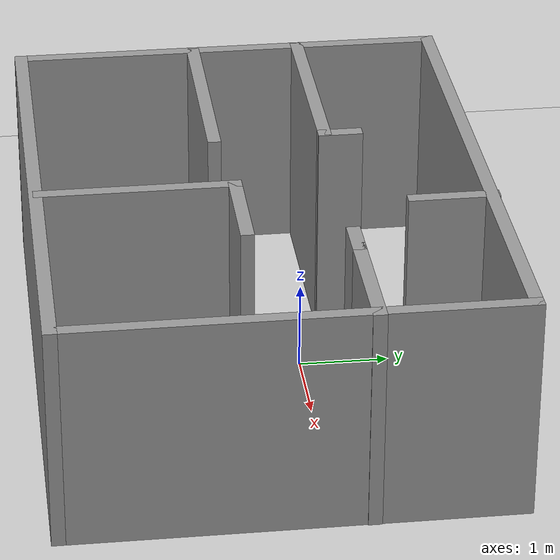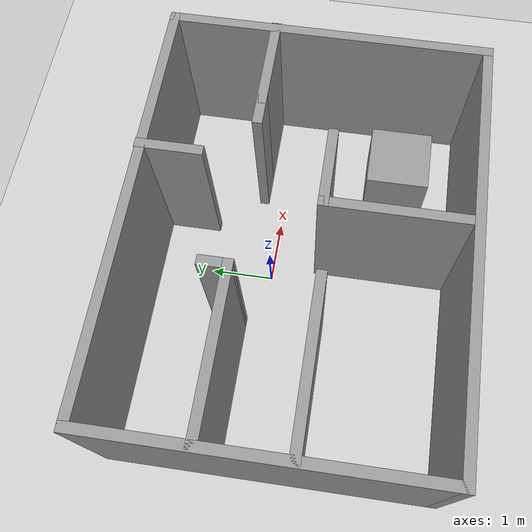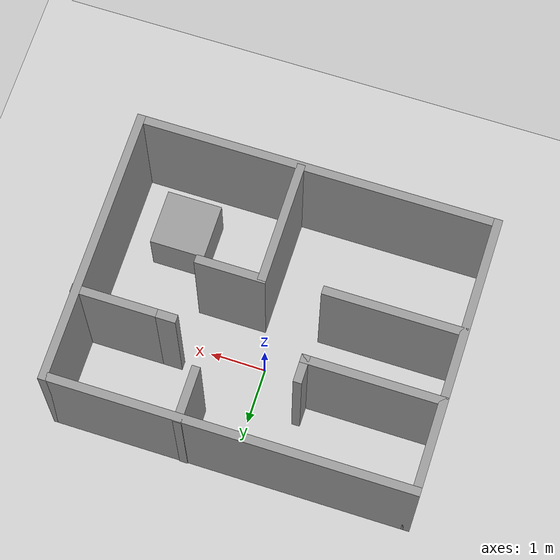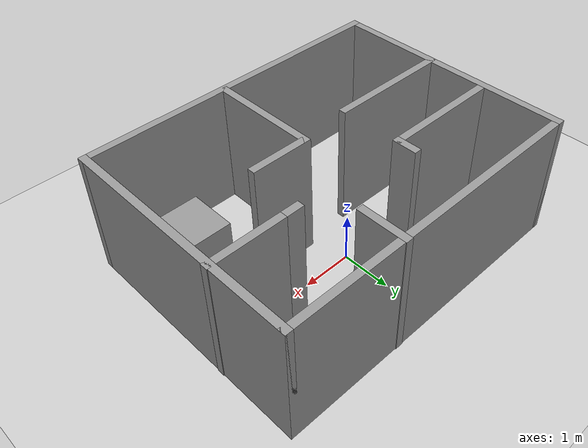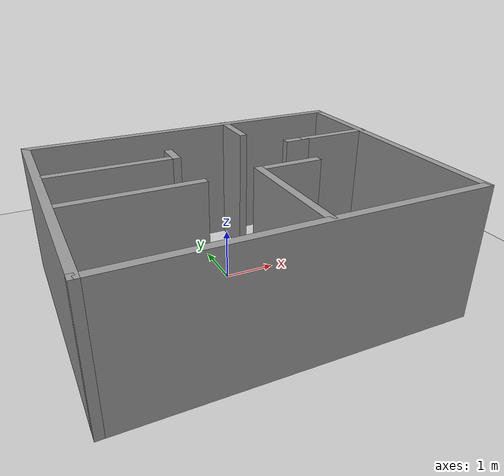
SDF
<sdf version="1.7">
 <world name="default">
  <light name="sun" type="directional">
   <pose>0 0 10 0 -0 0</pose>
   <diffuse>0.8 0.8 0.8 1</diffuse>
   <specular>0.2 0.2 0.2 1</specular>
   <attenuation>
    <range>1000</range>
    <constant>0.9</constant>
    <linear>0.01</linear>
    <quadratic>0.001</quadratic>
   </attenuation>
   <direction>-0.5 0.1 -0.9</direction>
   <spot><inner_angle>0</inner_angle><outer_angle>0</outer_angle><falloff>0</falloff></spot>
  </light>
  <model name="ground_plane">
   <static>1</static>
   <link name="link">
    <collision name="collision">
     <geometry><plane><normal>0 0 1</normal><size>100 100</size></plane></geometry>
     <surface><friction><ode><mu>100</mu><mu2>50</mu2></ode></friction></surface>
    </collision>
    <visual name="visual">
     <cast_shadows>0</cast_shadows>
     <geometry><plane><normal>0 0 1</normal><size>100 100</size></plane></geometry>
     <material>
      <script><uri>file://media/materials/scripts/gazebo.material</uri><name>Gazebo/Grey</name></script>
     </material>
    </visual>
   </link>
  </model>
  <gravity>0 0 -9.8</gravity>
  <magnetic_field>6e-06 2.3e-05 -4.2e-05</magnetic_field>
  <atmosphere type="adiabatic"/>
  <physics type="ode">
   <max_step_size>0.001</max_step_size>
   <real_time_factor>1</real_time_factor>
   <real_time_update_rate>1000</real_time_update_rate>
  </physics>
  <scene><ambient>0.4 0.4 0.4 1</ambient><background>0.7 0.7 0.7 1</background><shadows>1</shadows></scene>
  <spherical_coordinates>
   <surface_model>EARTH_WGS84</surface_model>
   <latitude_deg>0</latitude_deg>
   <longitude_deg>0</longitude_deg>
   <elevation>0</elevation>
   <heading_deg>0</heading_deg>
  </spherical_coordinates>
  <model name="new_room">
   <pose>-0.001362 0.437482 0 0 -0 0</pose>
   <link name="Wall_12">
    <collision name="Wall_12_Collision">
     <geometry><box><size>6.5 0.15 2.5</size></box></geometry>
     <pose>0 0 1.25 0 -0 0</pose>
    </collision>
    <visual name="Wall_12_Visual">
     <pose>0 0 1.25 0 -0 0</pose>
     <geometry><box><size>6.5 0.15 2.5</size></box></geometry>
     <material>
      <script><uri>file://media/materials/scripts/gazebo.material</uri><name>Gazebo/Grey</name></script>
      <ambient>1 1 1 1</ambient>
     </material>
     <meta><layer>0</layer></meta>
    </visual>
    <pose>-0.005612 1.5043 0 0 -0 0</pose>
   </link>
   <link name="Wall_13">
    <collision name="Wall_13_Collision">
     <geometry><box><size>5 0.15 2.5</size></box></geometry>
     <pose>0 0 1.25 0 -0 0</pose>
    </collision>
    <visual name="Wall_13_Visual">
     <pose>0 0 1.25 0 -0 0</pose>
     <geometry><box><size>5 0.15 2.5</size></box></geometry>
     <material>
      <script><uri>file://media/materials/scripts/gazebo.material</uri><name>Gazebo/Grey</name></script>
      <ambient>1 1 1 1</ambient>
     </material>
     <meta><layer>0</layer></meta>
    </visual>
    <pose>3.16939 -0.9207 0 0 -0 -1.5708</pose>
   </link>
   <link name="Wall_14">
    <collision name="Wall_14_Collision">
     <geometry><box><size>6.5 0.15 2.5</size></box></geometry>
     <pose>0 0 1.25 0 -0 0</pose>
    </collision>
    <visual name="Wall_14_Visual">
     <pose>0 0 1.25 0 -0 0</pose>
     <geometry><box><size>6.5 0.15 2.5</size></box></geometry>
     <material>
      <script><uri>file://media/materials/scripts/gazebo.material</uri><name>Gazebo/Grey</name></script>
      <ambient>1 1 1 1</ambient>
     </material>
     <meta><layer>0</layer></meta>
    </visual>
    <pose>-0.005612 -3.3457 0 0 -0 3.14159</pose>
   </link>
   <link name="Wall_15">
    <collision name="Wall_15_Collision">
     <geometry><box><size>5 0.15 2.5</size></box></geometry>
     <pose>0 0 1.25 0 -0 0</pose>
    </collision>
    <visual name="Wall_15_Visual">
     <pose>0 0 1.25 0 -0 0</pose>
     <geometry><box><size>5 0.15 2.5</size></box></geometry>
     <material>
      <script><uri>file://media/materials/scripts/gazebo.material</uri><name>Gazebo/Grey</name></script>
      <ambient>1 1 1 1</ambient>
     </material>
     <meta><layer>0</layer></meta>
    </visual>
    <pose>-3.18061 -0.9207 0 0 -0 1.5708</pose>
   </link>
   <link name="Wall_17">
    <collision name="Wall_17_Collision">
     <geometry><box><size>2.5 0.15 2.5</size></box></geometry>
     <pose>0 0 1.25 0 -0 0</pose>
    </collision>
    <visual name="Wall_17_Visual">
     <pose>0 0 1.25 0 -0 0</pose>
     <geometry><box><size>2.5 0.15 2.5</size></box></geometry>
     <material>
      <script><uri>file://media/materials/scripts/gazebo.material</uri><name>Gazebo/Grey</name></script>
      <ambient>1 1 1 1</ambient>
     </material>
     <meta><layer>0</layer></meta>
    </visual>
    <pose>-1.99239 -0.069475 0 0 -0 0</pose>
   </link>
   <link name="Wall_18">
    <collision name="Wall_18_Collision">
     <geometry><box><size>0.5 0.15 2.5</size></box></geometry>
     <pose>0 0 1.25 0 -0 0</pose>
    </collision>
    <visual name="Wall_18_Visual">
     <pose>0 0 1.25 0 -0 0</pose>
     <geometry><box><size>0.5 0.15 2.5</size></box></geometry>
     <material>
      <script><uri>file://media/materials/scripts/gazebo.material</uri><name>Gazebo/Grey</name></script>
      <ambient>1 1 1 1</ambient>
     </material>
     <meta><layer>0</layer></meta>
    </visual>
    <pose>-0.817387 0.105525 0 0 -0 1.5708</pose>
   </link>
   <link name="Wall_20">
    <collision name="Wall_20_Collision">
     <geometry><box><size>1 0.15 2.5</size></box></geometry>
     <pose>0 0 1.25 0 -0 0</pose>
    </collision>
    <visual name="Wall_20_Visual">
     <pose>0 0 1.25 0 -0 0</pose>
     <geometry><box><size>1 0.15 2.5</size></box></geometry>
     <material>
      <script><uri>file://media/materials/scripts/gazebo.material</uri><name>Gazebo/Grey</name></script>
      <ambient>1 1 1 1</ambient>
     </material>
     <meta><layer>0</layer></meta>
    </visual>
    <pose>0.839788 1.09252 0 0 -0 -1.5708</pose>
   </link>
   <link name="Wall_22">
    <collision name="Wall_22_Collision">
     <geometry><box><size>1.5 0.15 2.5</size></box></geometry>
     <pose>0 0 1.25 0 -0 0</pose>
    </collision>
    <visual name="Wall_22_Visual">
     <pose>0 0 1.25 0 -0 0</pose>
     <geometry><box><size>1.5 0.15 2.5</size></box></geometry>
     <material>
      <script><uri>file://media/materials/scripts/gazebo.material</uri><name>Gazebo/Grey</name></script>
      <ambient>1 1 1 1</ambient>
     </material>
     <meta><layer>0</layer></meta>
    </visual>
    <pose>2.50561 -0.0827 0 0 -0 3.14159</pose>
   </link>
   <link name="Wall_23">
    <collision name="Wall_23_Collision">
     <geometry><box><size>0.5 0.15 2.5</size></box></geometry>
     <pose>0 0 1.25 0 -0 0</pose>
    </collision>
    <visual name="Wall_23_Visual">
     <pose>0 0 1.25 0 -0 0</pose>
     <geometry><box><size>0.5 0.15 2.5</size></box></geometry>
     <material>
      <script><uri>file://media/materials/scripts/gazebo.material</uri><name>Gazebo/Grey</name></script>
      <ambient>1 1 1 1</ambient>
     </material>
     <meta><layer>0</layer></meta>
    </visual>
    <pose>1.65561 -0.0827 0 0 -0 3.14159</pose>
   </link>
   <link name="Wall_25">
    <collision name="Wall_25_Collision">
     <geometry><box><size>2.5 0.15 2.5</size></box></geometry>
     <pose>0 0 1.25 0 -0 0</pose>
    </collision>
    <visual name="Wall_25_Visual">
     <pose>0 0 1.25 0 -0 0</pose>
     <geometry><box><size>2.5 0.15 2.5</size></box></geometry>
     <material>
      <script><uri>file://media/materials/scripts/gazebo.material</uri><name>Gazebo/Grey</name></script>
      <ambient>1 1 1 1</ambient>
     </material>
     <meta><layer>0</layer></meta>
    </visual>
    <pose>-1.97916 -1.31262 0 0 -0 0</pose>
   </link>
   <link name="Wall_30">
    <collision name="Wall_30_Collision">
     <geometry><box><size>2.25 0.15 2.5</size></box></geometry>
     <pose>0 0 1.25 0 -0 0</pose>
    </collision>
    <visual name="Wall_30_Visual">
     <pose>0 0 1.25 0 -0 0</pose>
     <geometry><box><size>2.25 0.15 2.5</size></box></geometry>
     <material>
      <script><uri>file://media/materials/scripts/gazebo.material</uri><name>Gazebo/Grey</name></script>
      <ambient>1 1 1 1</ambient>
     </material>
     <meta><layer>0</layer></meta>
    </visual>
    <pose>0.284338 -2.24638 0 0 -0 1.5708</pose>
   </link>
   <link name="Wall_31">
    <collision name="Wall_31_Collision">
     <geometry><box><size>1.25 0.15 2.5</size></box></geometry>
     <pose>0 0 1.25 0 -0 0</pose>
    </collision>
    <visual name="Wall_31_Visual">
     <pose>0 0 1.25 0 -0 0</pose>
     <geometry><box><size>1.25 0.15 2.5</size></box></geometry>
     <material>
      <script><uri>file://media/materials/scripts/gazebo.material</uri><name>Gazebo/Grey</name></script>
      <ambient>1 1 1 1</ambient>
     </material>
     <meta><layer>0</layer></meta>
    </visual>
    <pose>0.834338 -1.19637 0 0 -0 0</pose>
   </link>
   <static>1</static>
  </model>
  <model name="unit_box">
   <pose>2.05916 -1.85669 0.5 0 -0 0</pose>
   <link name="link">
    <inertial>
     <mass>1</mass>
     <inertia>
      <ixx>0.166667</ixx>
      <ixy>0</ixy>
      <ixz>0</ixz>
      <iyy>0.166667</iyy>
      <iyz>0</iyz>
      <izz>0.166667</izz>
     </inertia>
    </inertial>
    <collision name="collision"><geometry><box><size>1 1 1</size></box></geometry></collision>
    <visual name="visual">
     <geometry><box><size>1 1 1</size></box></geometry>
     <material>
      <script><name>Gazebo/Grey</name><uri>file://media/materials/scripts/gazebo.material</uri></script>
     </material>
    </visual>
   </link>
  </model>
 </world>
</sdf>
